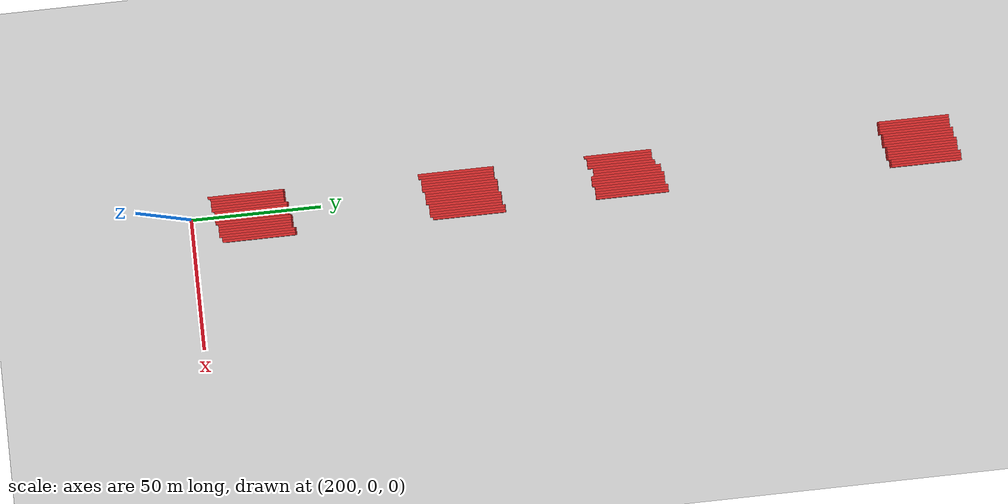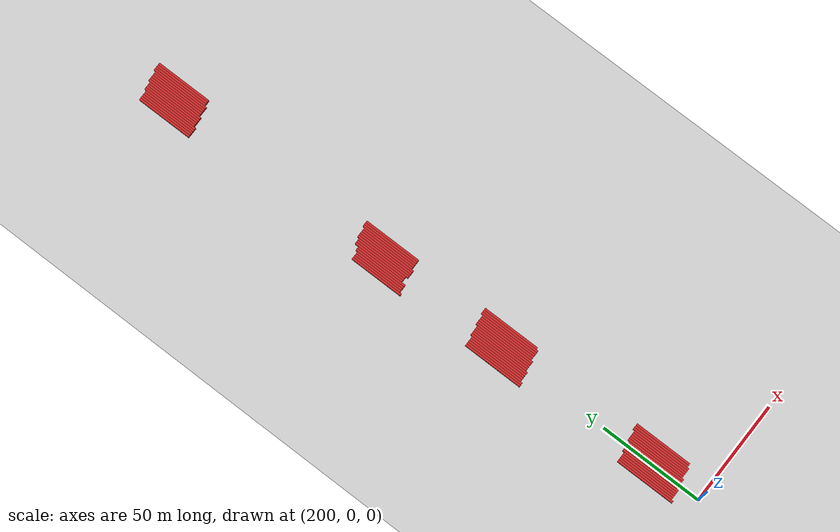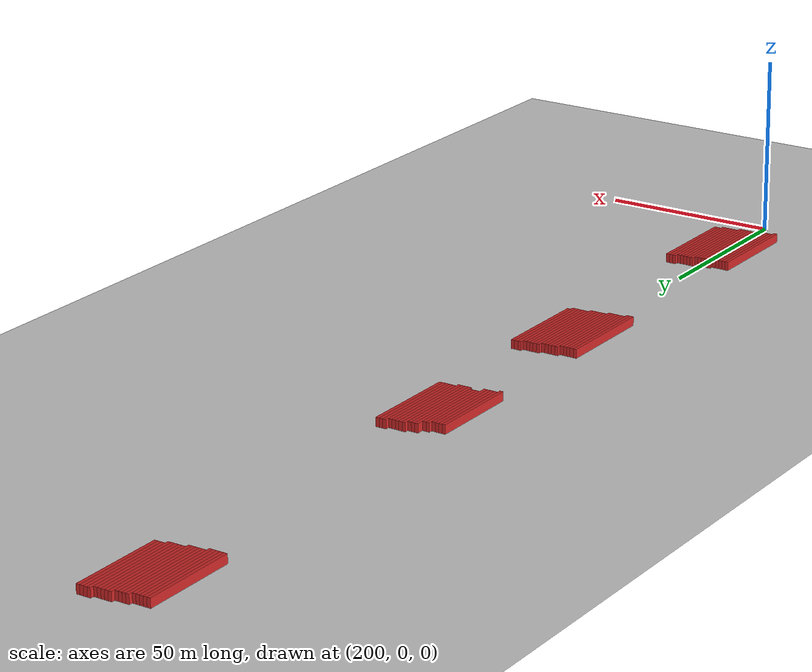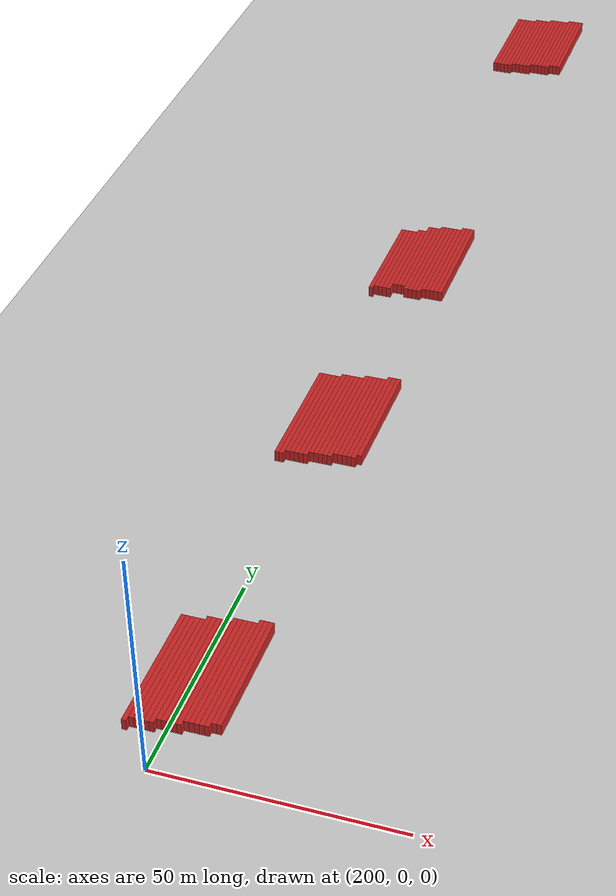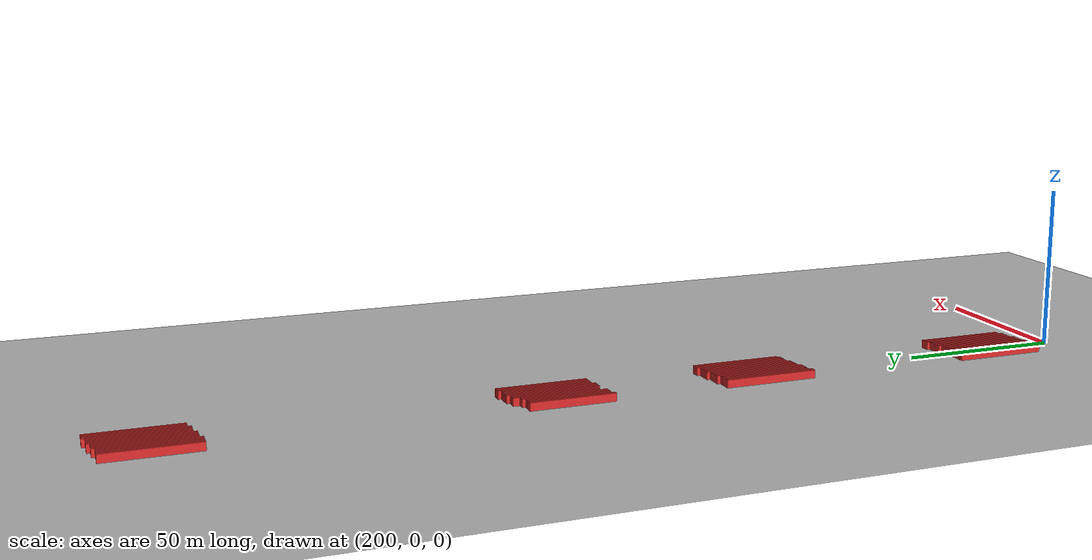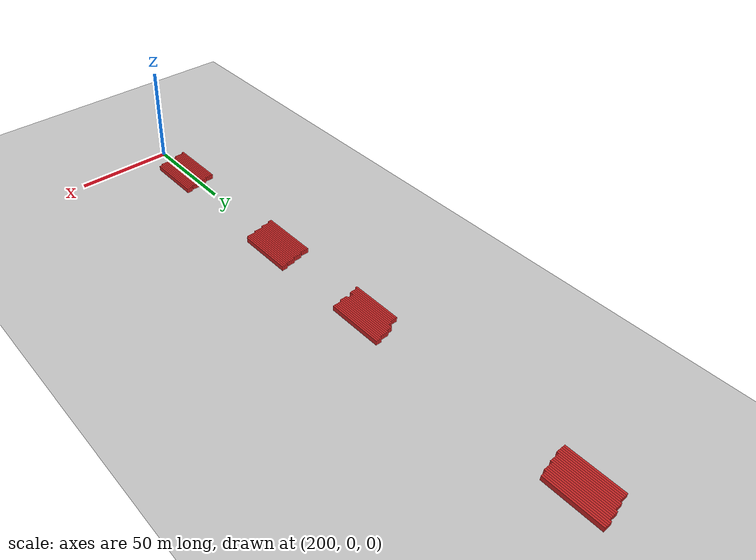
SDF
<sdf version="1.4">
 <world name="1_wall">
  <model name="ground_plane">
   <static>1</static>
   <link name="link">
    <collision name="collision">
     <geometry><plane><normal>0 0 1</normal><size>1000 1000</size></plane></geometry>
     <surface><friction><ode><mu>100</mu><mu2>50</mu2></ode></friction></surface>
    </collision>
    <visual name="visual">
     <cast_shadows>0</cast_shadows>
     <geometry><plane><normal>0 0 1</normal><size>10000 10000</size></plane></geometry>
     <material>
      <script><uri>file://media/materials/scripts/gazebo.material</uri><name>Gazebo/Grey</name></script>
     </material>
    </visual>
    <velocity_decay><linear>0</linear><angular>0</angular></velocity_decay>
   </link>
  </model>
  <model name="Wall_569">
   <static>1</static>
   <link name="Wall_569">
    <collision name="Wall_Collision_569">
     <geometry><box><size>27.0 1.0 2.5</size></box></geometry>
     <pose>0 0 1.25 0 -0 0</pose>
    </collision>
    <visual name="Wall_Visual_569">
     <pose>0 0 1.25 0 -0 0</pose>
     <geometry><box><size>27.0 1.0 2.5</size></box></geometry>
     <material>
      <script><uri>file://media/materials/scripts/gazebo.material</uri><name>Gazebo/Red</name></script>
     </material>
    </visual>
    <velocity_decay><linear>0</linear><angular>0</angular></velocity_decay>
    <pose>191.5 280.5 0 0 0 1.5707963267948966</pose>
   </link>
  </model>
  <model name="Wall_570">
   <static>1</static>
   <link name="Wall_570">
    <collision name="Wall_Collision_570">
     <geometry><box><size>29.0 1.0 2.5</size></box></geometry>
     <pose>0 0 1.25 0 -0 0</pose>
    </collision>
    <visual name="Wall_Visual_570">
     <pose>0 0 1.25 0 -0 0</pose>
     <geometry><box><size>29.0 1.0 2.5</size></box></geometry>
     <material>
      <script><uri>file://media/materials/scripts/gazebo.material</uri><name>Gazebo/Red</name></script>
     </material>
    </visual>
    <velocity_decay><linear>0</linear><angular>0</angular></velocity_decay>
    <pose>192.5 22.5 0 0 0 1.5707963267948966</pose>
   </link>
  </model>
  <model name="Wall_571">
   <static>1</static>
   <link name="Wall_571">
    <collision name="Wall_Collision_571">
     <geometry><box><size>29.0 1.0 2.5</size></box></geometry>
     <pose>0 0 1.25 0 -0 0</pose>
    </collision>
    <visual name="Wall_Visual_571">
     <pose>0 0 1.25 0 -0 0</pose>
     <geometry><box><size>29.0 1.0 2.5</size></box></geometry>
     <material>
      <script><uri>file://media/materials/scripts/gazebo.material</uri><name>Gazebo/Red</name></script>
     </material>
    </visual>
    <velocity_decay><linear>0</linear><angular>0</angular></velocity_decay>
    <pose>192.5 103.5 0 0 0 1.5707963267948966</pose>
   </link>
  </model>
  <model name="Wall_572">
   <static>1</static>
   <link name="Wall_572">
    <collision name="Wall_Collision_572">
     <geometry><box><size>26.0 1.0 2.5</size></box></geometry>
     <pose>0 0 1.25 0 -0 0</pose>
    </collision>
    <visual name="Wall_Visual_572">
     <pose>0 0 1.25 0 -0 0</pose>
     <geometry><box><size>26.0 1.0 2.5</size></box></geometry>
     <material>
      <script><uri>file://media/materials/scripts/gazebo.material</uri><name>Gazebo/Red</name></script>
     </material>
    </visual>
    <velocity_decay><linear>0</linear><angular>0</angular></velocity_decay>
    <pose>192.5 166.0 0 0 0 1.5707963267948966</pose>
   </link>
  </model>
  <model name="Wall_573">
   <static>1</static>
   <link name="Wall_573">
    <collision name="Wall_Collision_573">
     <geometry><box><size>27.0 1.0 2.5</size></box></geometry>
     <pose>0 0 1.25 0 -0 0</pose>
    </collision>
    <visual name="Wall_Visual_573">
     <pose>0 0 1.25 0 -0 0</pose>
     <geometry><box><size>27.0 1.0 2.5</size></box></geometry>
     <material>
      <script><uri>file://media/materials/scripts/gazebo.material</uri><name>Gazebo/Red</name></script>
     </material>
    </visual>
    <velocity_decay><linear>0</linear><angular>0</angular></velocity_decay>
    <pose>192.5 280.5 0 0 0 1.5707963267948966</pose>
   </link>
  </model>
  <model name="Wall_574">
   <static>1</static>
   <link name="Wall_574">
    <collision name="Wall_Collision_574">
     <geometry><box><size>28.0 1.0 2.5</size></box></geometry>
     <pose>0 0 1.25 0 -0 0</pose>
    </collision>
    <visual name="Wall_Visual_574">
     <pose>0 0 1.25 0 -0 0</pose>
     <geometry><box><size>28.0 1.0 2.5</size></box></geometry>
     <material>
      <script><uri>file://media/materials/scripts/gazebo.material</uri><name>Gazebo/Red</name></script>
     </material>
    </visual>
    <velocity_decay><linear>0</linear><angular>0</angular></velocity_decay>
    <pose>193.5 23.0 0 0 0 1.5707963267948966</pose>
   </link>
  </model>
  <model name="Wall_575">
   <static>1</static>
   <link name="Wall_575">
    <collision name="Wall_Collision_575">
     <geometry><box><size>29.0 1.0 2.5</size></box></geometry>
     <pose>0 0 1.25 0 -0 0</pose>
    </collision>
    <visual name="Wall_Visual_575">
     <pose>0 0 1.25 0 -0 0</pose>
     <geometry><box><size>29.0 1.0 2.5</size></box></geometry>
     <material>
      <script><uri>file://media/materials/scripts/gazebo.material</uri><name>Gazebo/Red</name></script>
     </material>
    </visual>
    <velocity_decay><linear>0</linear><angular>0</angular></velocity_decay>
    <pose>193.5 103.5 0 0 0 1.5707963267948966</pose>
   </link>
  </model>
  <model name="Wall_576">
   <static>1</static>
   <link name="Wall_576">
    <collision name="Wall_Collision_576">
     <geometry><box><size>25.0 1.0 2.5</size></box></geometry>
     <pose>0 0 1.25 0 -0 0</pose>
    </collision>
    <visual name="Wall_Visual_576">
     <pose>0 0 1.25 0 -0 0</pose>
     <geometry><box><size>25.0 1.0 2.5</size></box></geometry>
     <material>
      <script><uri>file://media/materials/scripts/gazebo.material</uri><name>Gazebo/Red</name></script>
     </material>
    </visual>
    <velocity_decay><linear>0</linear><angular>0</angular></velocity_decay>
    <pose>193.5 166.5 0 0 0 1.5707963267948966</pose>
   </link>
  </model>
  <model name="Wall_577">
   <static>1</static>
   <link name="Wall_577">
    <collision name="Wall_Collision_577">
     <geometry><box><size>27.0 1.0 2.5</size></box></geometry>
     <pose>0 0 1.25 0 -0 0</pose>
    </collision>
    <visual name="Wall_Visual_577">
     <pose>0 0 1.25 0 -0 0</pose>
     <geometry><box><size>27.0 1.0 2.5</size></box></geometry>
     <material>
      <script><uri>file://media/materials/scripts/gazebo.material</uri><name>Gazebo/Red</name></script>
     </material>
    </visual>
    <velocity_decay><linear>0</linear><angular>0</angular></velocity_decay>
    <pose>193.5 280.5 0 0 0 1.5707963267948966</pose>
   </link>
  </model>
  <model name="Wall_578">
   <static>1</static>
   <link name="Wall_578">
    <collision name="Wall_Collision_578">
     <geometry><box><size>28.0 1.0 2.5</size></box></geometry>
     <pose>0 0 1.25 0 -0 0</pose>
    </collision>
    <visual name="Wall_Visual_578">
     <pose>0 0 1.25 0 -0 0</pose>
     <geometry><box><size>28.0 1.0 2.5</size></box></geometry>
     <material>
      <script><uri>file://media/materials/scripts/gazebo.material</uri><name>Gazebo/Red</name></script>
     </material>
    </visual>
    <velocity_decay><linear>0</linear><angular>0</angular></velocity_decay>
    <pose>194.5 23.0 0 0 0 1.5707963267948966</pose>
   </link>
  </model>
  <model name="Wall_579">
   <static>1</static>
   <link name="Wall_579">
    <collision name="Wall_Collision_579">
     <geometry><box><size>28.0 1.0 2.5</size></box></geometry>
     <pose>0 0 1.25 0 -0 0</pose>
    </collision>
    <visual name="Wall_Visual_579">
     <pose>0 0 1.25 0 -0 0</pose>
     <geometry><box><size>28.0 1.0 2.5</size></box></geometry>
     <material>
      <script><uri>file://media/materials/scripts/gazebo.material</uri><name>Gazebo/Red</name></script>
     </material>
    </visual>
    <velocity_decay><linear>0</linear><angular>0</angular></velocity_decay>
    <pose>194.5 104.0 0 0 0 1.5707963267948966</pose>
   </link>
  </model>
  <model name="Wall_580">
   <static>1</static>
   <link name="Wall_580">
    <collision name="Wall_Collision_580">
     <geometry><box><size>25.0 1.0 2.5</size></box></geometry>
     <pose>0 0 1.25 0 -0 0</pose>
    </collision>
    <visual name="Wall_Visual_580">
     <pose>0 0 1.25 0 -0 0</pose>
     <geometry><box><size>25.0 1.0 2.5</size></box></geometry>
     <material>
      <script><uri>file://media/materials/scripts/gazebo.material</uri><name>Gazebo/Red</name></script>
     </material>
    </visual>
    <velocity_decay><linear>0</linear><angular>0</angular></velocity_decay>
    <pose>194.5 166.5 0 0 0 1.5707963267948966</pose>
   </link>
  </model>
  <model name="Wall_581">
   <static>1</static>
   <link name="Wall_581">
    <collision name="Wall_Collision_581">
     <geometry><box><size>27.0 1.0 2.5</size></box></geometry>
     <pose>0 0 1.25 0 -0 0</pose>
    </collision>
    <visual name="Wall_Visual_581">
     <pose>0 0 1.25 0 -0 0</pose>
     <geometry><box><size>27.0 1.0 2.5</size></box></geometry>
     <material>
      <script><uri>file://media/materials/scripts/gazebo.material</uri><name>Gazebo/Red</name></script>
     </material>
    </visual>
    <velocity_decay><linear>0</linear><angular>0</angular></velocity_decay>
    <pose>194.5 280.5 0 0 0 1.5707963267948966</pose>
   </link>
  </model>
  <model name="Wall_582">
   <static>1</static>
   <link name="Wall_582">
    <collision name="Wall_Collision_582">
     <geometry><box><size>28.0 1.0 2.5</size></box></geometry>
     <pose>0 0 1.25 0 -0 0</pose>
    </collision>
    <visual name="Wall_Visual_582">
     <pose>0 0 1.25 0 -0 0</pose>
     <geometry><box><size>28.0 1.0 2.5</size></box></geometry>
     <material>
      <script><uri>file://media/materials/scripts/gazebo.material</uri><name>Gazebo/Red</name></script>
     </material>
    </visual>
    <velocity_decay><linear>0</linear><angular>0</angular></velocity_decay>
    <pose>195.5 23.0 0 0 0 1.5707963267948966</pose>
   </link>
  </model>
  <model name="Wall_583">
   <static>1</static>
   <link name="Wall_583">
    <collision name="Wall_Collision_583">
     <geometry><box><size>28.0 1.0 2.5</size></box></geometry>
     <pose>0 0 1.25 0 -0 0</pose>
    </collision>
    <visual name="Wall_Visual_583">
     <pose>0 0 1.25 0 -0 0</pose>
     <geometry><box><size>28.0 1.0 2.5</size></box></geometry>
     <material>
      <script><uri>file://media/materials/scripts/gazebo.material</uri><name>Gazebo/Red</name></script>
     </material>
    </visual>
    <velocity_decay><linear>0</linear><angular>0</angular></velocity_decay>
    <pose>195.5 104.0 0 0 0 1.5707963267948966</pose>
   </link>
  </model>
  <model name="Wall_584">
   <static>1</static>
   <link name="Wall_584">
    <collision name="Wall_Collision_584">
     <geometry><box><size>25.0 1.0 2.5</size></box></geometry>
     <pose>0 0 1.25 0 -0 0</pose>
    </collision>
    <visual name="Wall_Visual_584">
     <pose>0 0 1.25 0 -0 0</pose>
     <geometry><box><size>25.0 1.0 2.5</size></box></geometry>
     <material>
      <script><uri>file://media/materials/scripts/gazebo.material</uri><name>Gazebo/Red</name></script>
     </material>
    </visual>
    <velocity_decay><linear>0</linear><angular>0</angular></velocity_decay>
    <pose>195.5 166.5 0 0 0 1.5707963267948966</pose>
   </link>
  </model>
  <model name="Wall_585">
   <static>1</static>
   <link name="Wall_585">
    <collision name="Wall_Collision_585">
     <geometry><box><size>27.0 1.0 2.5</size></box></geometry>
     <pose>0 0 1.25 0 -0 0</pose>
    </collision>
    <visual name="Wall_Visual_585">
     <pose>0 0 1.25 0 -0 0</pose>
     <geometry><box><size>27.0 1.0 2.5</size></box></geometry>
     <material>
      <script><uri>file://media/materials/scripts/gazebo.material</uri><name>Gazebo/Red</name></script>
     </material>
    </visual>
    <velocity_decay><linear>0</linear><angular>0</angular></velocity_decay>
    <pose>195.5 280.5 0 0 0 1.5707963267948966</pose>
   </link>
  </model>
  <model name="Wall_586">
   <static>1</static>
   <link name="Wall_586">
    <collision name="Wall_Collision_586">
     <geometry><box><size>28.0 1.0 2.5</size></box></geometry>
     <pose>0 0 1.25 0 -0 0</pose>
    </collision>
    <visual name="Wall_Visual_586">
     <pose>0 0 1.25 0 -0 0</pose>
     <geometry><box><size>28.0 1.0 2.5</size></box></geometry>
     <material>
      <script><uri>file://media/materials/scripts/gazebo.material</uri><name>Gazebo/Red</name></script>
     </material>
    </visual>
    <velocity_decay><linear>0</linear><angular>0</angular></velocity_decay>
    <pose>196.5 23.0 0 0 0 1.5707963267948966</pose>
   </link>
  </model>
  <model name="Wall_587">
   <static>1</static>
   <link name="Wall_587">
    <collision name="Wall_Collision_587">
     <geometry><box><size>28.0 1.0 2.5</size></box></geometry>
     <pose>0 0 1.25 0 -0 0</pose>
    </collision>
    <visual name="Wall_Visual_587">
     <pose>0 0 1.25 0 -0 0</pose>
     <geometry><box><size>28.0 1.0 2.5</size></box></geometry>
     <material>
      <script><uri>file://media/materials/scripts/gazebo.material</uri><name>Gazebo/Red</name></script>
     </material>
    </visual>
    <velocity_decay><linear>0</linear><angular>0</angular></velocity_decay>
    <pose>196.5 104.0 0 0 0 1.5707963267948966</pose>
   </link>
  </model>
  <model name="Wall_588">
   <static>1</static>
   <link name="Wall_588">
    <collision name="Wall_Collision_588">
     <geometry><box><size>26.0 1.0 2.5</size></box></geometry>
     <pose>0 0 1.25 0 -0 0</pose>
    </collision>
    <visual name="Wall_Visual_588">
     <pose>0 0 1.25 0 -0 0</pose>
     <geometry><box><size>26.0 1.0 2.5</size></box></geometry>
     <material>
      <script><uri>file://media/materials/scripts/gazebo.material</uri><name>Gazebo/Red</name></script>
     </material>
    </visual>
    <velocity_decay><linear>0</linear><angular>0</angular></velocity_decay>
    <pose>196.5 167.0 0 0 0 1.5707963267948966</pose>
   </link>
  </model>
  <model name="Wall_589">
   <static>1</static>
   <link name="Wall_589">
    <collision name="Wall_Collision_589">
     <geometry><box><size>27.0 1.0 2.5</size></box></geometry>
     <pose>0 0 1.25 0 -0 0</pose>
    </collision>
    <visual name="Wall_Visual_589">
     <pose>0 0 1.25 0 -0 0</pose>
     <geometry><box><size>27.0 1.0 2.5</size></box></geometry>
     <material>
      <script><uri>file://media/materials/scripts/gazebo.material</uri><name>Gazebo/Red</name></script>
     </material>
    </visual>
    <velocity_decay><linear>0</linear><angular>0</angular></velocity_decay>
    <pose>196.5 281.5 0 0 0 1.5707963267948966</pose>
   </link>
  </model>
  <model name="Wall_590">
   <static>1</static>
   <link name="Wall_590">
    <collision name="Wall_Collision_590">
     <geometry><box><size>29.0 1.0 2.5</size></box></geometry>
     <pose>0 0 1.25 0 -0 0</pose>
    </collision>
    <visual name="Wall_Visual_590">
     <pose>0 0 1.25 0 -0 0</pose>
     <geometry><box><size>29.0 1.0 2.5</size></box></geometry>
     <material>
      <script><uri>file://media/materials/scripts/gazebo.material</uri><name>Gazebo/Red</name></script>
     </material>
    </visual>
    <velocity_decay><linear>0</linear><angular>0</angular></velocity_decay>
    <pose>197.5 23.5 0 0 0 1.5707963267948966</pose>
   </link>
  </model>
  <model name="Wall_591">
   <static>1</static>
   <link name="Wall_591">
    <collision name="Wall_Collision_591">
     <geometry><box><size>29.0 1.0 2.5</size></box></geometry>
     <pose>0 0 1.25 0 -0 0</pose>
    </collision>
    <visual name="Wall_Visual_591">
     <pose>0 0 1.25 0 -0 0</pose>
     <geometry><box><size>29.0 1.0 2.5</size></box></geometry>
     <material>
      <script><uri>file://media/materials/scripts/gazebo.material</uri><name>Gazebo/Red</name></script>
     </material>
    </visual>
    <velocity_decay><linear>0</linear><angular>0</angular></velocity_decay>
    <pose>197.5 104.5 0 0 0 1.5707963267948966</pose>
   </link>
  </model>
  <model name="Wall_592">
   <static>1</static>
   <link name="Wall_592">
    <collision name="Wall_Collision_592">
     <geometry><box><size>24.0 1.0 2.5</size></box></geometry>
     <pose>0 0 1.25 0 -0 0</pose>
    </collision>
    <visual name="Wall_Visual_592">
     <pose>0 0 1.25 0 -0 0</pose>
     <geometry><box><size>24.0 1.0 2.5</size></box></geometry>
     <material>
      <script><uri>file://media/materials/scripts/gazebo.material</uri><name>Gazebo/Red</name></script>
     </material>
    </visual>
    <velocity_decay><linear>0</linear><angular>0</angular></velocity_decay>
    <pose>197.5 168.0 0 0 0 1.5707963267948966</pose>
   </link>
  </model>
  <model name="Wall_593">
   <static>1</static>
   <link name="Wall_593">
    <collision name="Wall_Collision_593">
     <geometry><box><size>27.0 1.0 2.5</size></box></geometry>
     <pose>0 0 1.25 0 -0 0</pose>
    </collision>
    <visual name="Wall_Visual_593">
     <pose>0 0 1.25 0 -0 0</pose>
     <geometry><box><size>27.0 1.0 2.5</size></box></geometry>
     <material>
      <script><uri>file://media/materials/scripts/gazebo.material</uri><name>Gazebo/Red</name></script>
     </material>
    </visual>
    <velocity_decay><linear>0</linear><angular>0</angular></velocity_decay>
    <pose>197.5 281.5 0 0 0 1.5707963267948966</pose>
   </link>
  </model>
  <model name="Wall_594">
   <static>1</static>
   <link name="Wall_594">
    <collision name="Wall_Collision_594">
     <geometry><box><size>28.0 1.0 2.5</size></box></geometry>
     <pose>0 0 1.25 0 -0 0</pose>
    </collision>
    <visual name="Wall_Visual_594">
     <pose>0 0 1.25 0 -0 0</pose>
     <geometry><box><size>28.0 1.0 2.5</size></box></geometry>
     <material>
      <script><uri>file://media/materials/scripts/gazebo.material</uri><name>Gazebo/Red</name></script>
     </material>
    </visual>
    <velocity_decay><linear>0</linear><angular>0</angular></velocity_decay>
    <pose>198.5 24.0 0 0 0 1.5707963267948966</pose>
   </link>
  </model>
  <model name="Wall_595">
   <static>1</static>
   <link name="Wall_595">
    <collision name="Wall_Collision_595">
     <geometry><box><size>29.0 1.0 2.5</size></box></geometry>
     <pose>0 0 1.25 0 -0 0</pose>
    </collision>
    <visual name="Wall_Visual_595">
     <pose>0 0 1.25 0 -0 0</pose>
     <geometry><box><size>29.0 1.0 2.5</size></box></geometry>
     <material>
      <script><uri>file://media/materials/scripts/gazebo.material</uri><name>Gazebo/Red</name></script>
     </material>
    </visual>
    <velocity_decay><linear>0</linear><angular>0</angular></velocity_decay>
    <pose>198.5 104.5 0 0 0 1.5707963267948966</pose>
   </link>
  </model>
  <model name="Wall_596">
   <static>1</static>
   <link name="Wall_596">
    <collision name="Wall_Collision_596">
     <geometry><box><size>26.0 1.0 2.5</size></box></geometry>
     <pose>0 0 1.25 0 -0 0</pose>
    </collision>
    <visual name="Wall_Visual_596">
     <pose>0 0 1.25 0 -0 0</pose>
     <geometry><box><size>26.0 1.0 2.5</size></box></geometry>
     <material>
      <script><uri>file://media/materials/scripts/gazebo.material</uri><name>Gazebo/Red</name></script>
     </material>
    </visual>
    <velocity_decay><linear>0</linear><angular>0</angular></velocity_decay>
    <pose>198.5 169.0 0 0 0 1.5707963267948966</pose>
   </link>
  </model>
  <model name="Wall_597">
   <static>1</static>
   <link name="Wall_597">
    <collision name="Wall_Collision_597">
     <geometry><box><size>27.0 1.0 2.5</size></box></geometry>
     <pose>0 0 1.25 0 -0 0</pose>
    </collision>
    <visual name="Wall_Visual_597">
     <pose>0 0 1.25 0 -0 0</pose>
     <geometry><box><size>27.0 1.0 2.5</size></box></geometry>
     <material>
      <script><uri>file://media/materials/scripts/gazebo.material</uri><name>Gazebo/Red</name></script>
     </material>
    </visual>
    <velocity_decay><linear>0</linear><angular>0</angular></velocity_decay>
    <pose>198.5 281.5 0 0 0 1.5707963267948966</pose>
   </link>
  </model>
  <model name="Wall_598">
   <static>1</static>
   <link name="Wall_598">
    <collision name="Wall_Collision_598">
     <geometry><box><size>28.0 1.0 2.5</size></box></geometry>
     <pose>0 0 1.25 0 -0 0</pose>
    </collision>
    <visual name="Wall_Visual_598">
     <pose>0 0 1.25 0 -0 0</pose>
     <geometry><box><size>28.0 1.0 2.5</size></box></geometry>
     <material>
      <script><uri>file://media/materials/scripts/gazebo.material</uri><name>Gazebo/Red</name></script>
     </material>
    </visual>
    <velocity_decay><linear>0</linear><angular>0</angular></velocity_decay>
    <pose>199.5 24.0 0 0 0 1.5707963267948966</pose>
   </link>
  </model>
  <model name="Wall_599">
   <static>1</static>
   <link name="Wall_599">
    <collision name="Wall_Collision_599">
     <geometry><box><size>28.0 1.0 2.5</size></box></geometry>
     <pose>0 0 1.25 0 -0 0</pose>
    </collision>
    <visual name="Wall_Visual_599">
     <pose>0 0 1.25 0 -0 0</pose>
     <geometry><box><size>28.0 1.0 2.5</size></box></geometry>
     <material>
      <script><uri>file://media/materials/scripts/gazebo.material</uri><name>Gazebo/Red</name></script>
     </material>
    </visual>
    <velocity_decay><linear>0</linear><angular>0</angular></velocity_decay>
    <pose>199.5 105.0 0 0 0 1.5707963267948966</pose>
   </link>
  </model>
  <model name="Wall_600">
   <static>1</static>
   <link name="Wall_600">
    <collision name="Wall_Collision_600">
     <geometry><box><size>26.0 1.0 2.5</size></box></geometry>
     <pose>0 0 1.25 0 -0 0</pose>
    </collision>
    <visual name="Wall_Visual_600">
     <pose>0 0 1.25 0 -0 0</pose>
     <geometry><box><size>26.0 1.0 2.5</size></box></geometry>
     <material>
      <script><uri>file://media/materials/scripts/gazebo.material</uri><name>Gazebo/Red</name></script>
     </material>
    </visual>
    <velocity_decay><linear>0</linear><angular>0</angular></velocity_decay>
    <pose>199.5 169.0 0 0 0 1.5707963267948966</pose>
   </link>
  </model>
  <model name="Wall_601">
   <static>1</static>
   <link name="Wall_601">
    <collision name="Wall_Collision_601">
     <geometry><box><size>27.0 1.0 2.5</size></box></geometry>
     <pose>0 0 1.25 0 -0 0</pose>
    </collision>
    <visual name="Wall_Visual_601">
     <pose>0 0 1.25 0 -0 0</pose>
     <geometry><box><size>27.0 1.0 2.5</size></box></geometry>
     <material>
      <script><uri>file://media/materials/scripts/gazebo.material</uri><name>Gazebo/Red</name></script>
     </material>
    </visual>
    <velocity_decay><linear>0</linear><angular>0</angular></velocity_decay>
    <pose>199.5 281.5 0 0 0 1.5707963267948966</pose>
   </link>
  </model>
  <model name="Wall_602">
   <static>1</static>
   <link name="Wall_602">
    <collision name="Wall_Collision_602">
     <geometry><box><size>28.0 1.0 2.5</size></box></geometry>
     <pose>0 0 1.25 0 -0 0</pose>
    </collision>
    <visual name="Wall_Visual_602">
     <pose>0 0 1.25 0 -0 0</pose>
     <geometry><box><size>28.0 1.0 2.5</size></box></geometry>
     <material>
      <script><uri>file://media/materials/scripts/gazebo.material</uri><name>Gazebo/Red</name></script>
     </material>
    </visual>
    <velocity_decay><linear>0</linear><angular>0</angular></velocity_decay>
    <pose>200.5 24.0 0 0 0 1.5707963267948966</pose>
   </link>
  </model>
  <model name="Wall_603">
   <static>1</static>
   <link name="Wall_603">
    <collision name="Wall_Collision_603">
     <geometry><box><size>28.0 1.0 2.5</size></box></geometry>
     <pose>0 0 1.25 0 -0 0</pose>
    </collision>
    <visual name="Wall_Visual_603">
     <pose>0 0 1.25 0 -0 0</pose>
     <geometry><box><size>28.0 1.0 2.5</size></box></geometry>
     <material>
      <script><uri>file://media/materials/scripts/gazebo.material</uri><name>Gazebo/Red</name></script>
     </material>
    </visual>
    <velocity_decay><linear>0</linear><angular>0</angular></velocity_decay>
    <pose>200.5 105.0 0 0 0 1.5707963267948966</pose>
   </link>
  </model>
  <model name="Wall_604">
   <static>1</static>
   <link name="Wall_604">
    <collision name="Wall_Collision_604">
     <geometry><box><size>27.0 1.0 2.5</size></box></geometry>
     <pose>0 0 1.25 0 -0 0</pose>
    </collision>
    <visual name="Wall_Visual_604">
     <pose>0 0 1.25 0 -0 0</pose>
     <geometry><box><size>27.0 1.0 2.5</size></box></geometry>
     <material>
      <script><uri>file://media/materials/scripts/gazebo.material</uri><name>Gazebo/Red</name></script>
     </material>
    </visual>
    <velocity_decay><linear>0</linear><angular>0</angular></velocity_decay>
    <pose>200.5 168.5 0 0 0 1.5707963267948966</pose>
   </link>
  </model>
  <model name="Wall_605">
   <static>1</static>
   <link name="Wall_605">
    <collision name="Wall_Collision_605">
     <geometry><box><size>28.0 1.0 2.5</size></box></geometry>
     <pose>0 0 1.25 0 -0 0</pose>
    </collision>
    <visual name="Wall_Visual_605">
     <pose>0 0 1.25 0 -0 0</pose>
     <geometry><box><size>28.0 1.0 2.5</size></box></geometry>
     <material>
      <script><uri>file://media/materials/scripts/gazebo.material</uri><name>Gazebo/Red</name></script>
     </material>
    </visual>
    <velocity_decay><linear>0</linear><angular>0</angular></velocity_decay>
    <pose>200.5 282.0 0 0 0 1.5707963267948966</pose>
   </link>
  </model>
  <model name="Wall_606">
   <static>1</static>
   <link name="Wall_606">
    <collision name="Wall_Collision_606">
     <geometry><box><size>28.0 1.0 2.5</size></box></geometry>
     <pose>0 0 1.25 0 -0 0</pose>
    </collision>
    <visual name="Wall_Visual_606">
     <pose>0 0 1.25 0 -0 0</pose>
     <geometry><box><size>28.0 1.0 2.5</size></box></geometry>
     <material>
      <script><uri>file://media/materials/scripts/gazebo.material</uri><name>Gazebo/Red</name></script>
     </material>
    </visual>
    <velocity_decay><linear>0</linear><angular>0</angular></velocity_decay>
    <pose>201.5 24.0 0 0 0 1.5707963267948966</pose>
   </link>
  </model>
  <model name="Wall_607">
   <static>1</static>
   <link name="Wall_607">
    <collision name="Wall_Collision_607">
     <geometry><box><size>28.0 1.0 2.5</size></box></geometry>
     <pose>0 0 1.25 0 -0 0</pose>
    </collision>
    <visual name="Wall_Visual_607">
     <pose>0 0 1.25 0 -0 0</pose>
     <geometry><box><size>28.0 1.0 2.5</size></box></geometry>
     <material>
      <script><uri>file://media/materials/scripts/gazebo.material</uri><name>Gazebo/Red</name></script>
     </material>
    </visual>
    <velocity_decay><linear>0</linear><angular>0</angular></velocity_decay>
    <pose>201.5 105.0 0 0 0 1.5707963267948966</pose>
   </link>
  </model>
  <model name="Wall_608">
   <static>1</static>
   <link name="Wall_608">
    <collision name="Wall_Collision_608">
     <geometry><box><size>28.0 1.0 2.5</size></box></geometry>
     <pose>0 0 1.25 0 -0 0</pose>
    </collision>
    <visual name="Wall_Visual_608">
     <pose>0 0 1.25 0 -0 0</pose>
     <geometry><box><size>28.0 1.0 2.5</size></box></geometry>
     <material>
      <script><uri>file://media/materials/scripts/gazebo.material</uri><name>Gazebo/Red</name></script>
     </material>
    </visual>
    <velocity_decay><linear>0</linear><angular>0</angular></velocity_decay>
    <pose>201.5 169.0 0 0 0 1.5707963267948966</pose>
   </link>
  </model>
  <model name="Wall_609">
   <static>1</static>
   <link name="Wall_609">
    <collision name="Wall_Collision_609">
     <geometry><box><size>27.0 1.0 2.5</size></box></geometry>
     <pose>0 0 1.25 0 -0 0</pose>
    </collision>
    <visual name="Wall_Visual_609">
     <pose>0 0 1.25 0 -0 0</pose>
     <geometry><box><size>27.0 1.0 2.5</size></box></geometry>
     <material>
      <script><uri>file://media/materials/scripts/gazebo.material</uri><name>Gazebo/Red</name></script>
     </material>
    </visual>
    <velocity_decay><linear>0</linear><angular>0</angular></velocity_decay>
    <pose>201.5 282.5 0 0 0 1.5707963267948966</pose>
   </link>
  </model>
  <model name="Wall_610">
   <static>1</static>
   <link name="Wall_610">
    <collision name="Wall_Collision_610">
     <geometry><box><size>29.0 1.0 2.5</size></box></geometry>
     <pose>0 0 1.25 0 -0 0</pose>
    </collision>
    <visual name="Wall_Visual_610">
     <pose>0 0 1.25 0 -0 0</pose>
     <geometry><box><size>29.0 1.0 2.5</size></box></geometry>
     <material>
      <script><uri>file://media/materials/scripts/gazebo.material</uri><name>Gazebo/Red</name></script>
     </material>
    </visual>
    <velocity_decay><linear>0</linear><angular>0</angular></velocity_decay>
    <pose>202.5 24.5 0 0 0 1.5707963267948966</pose>
   </link>
  </model>
  <model name="Wall_611">
   <static>1</static>
   <link name="Wall_611">
    <collision name="Wall_Collision_611">
     <geometry><box><size>29.0 1.0 2.5</size></box></geometry>
     <pose>0 0 1.25 0 -0 0</pose>
    </collision>
    <visual name="Wall_Visual_611">
     <pose>0 0 1.25 0 -0 0</pose>
     <geometry><box><size>29.0 1.0 2.5</size></box></geometry>
     <material>
      <script><uri>file://media/materials/scripts/gazebo.material</uri><name>Gazebo/Red</name></script>
     </material>
    </visual>
    <velocity_decay><linear>0</linear><angular>0</angular></velocity_decay>
    <pose>202.5 105.5 0 0 0 1.5707963267948966</pose>
   </link>
  </model>
  <model name="Wall_612">
   <static>1</static>
   <link name="Wall_612">
    <collision name="Wall_Collision_612">
     <geometry><box><size>28.0 1.0 2.5</size></box></geometry>
     <pose>0 0 1.25 0 -0 0</pose>
    </collision>
    <visual name="Wall_Visual_612">
     <pose>0 0 1.25 0 -0 0</pose>
     <geometry><box><size>28.0 1.0 2.5</size></box></geometry>
     <material>
      <script><uri>file://media/materials/scripts/gazebo.material</uri><name>Gazebo/Red</name></script>
     </material>
    </visual>
    <velocity_decay><linear>0</linear><angular>0</angular></velocity_decay>
    <pose>202.5 169.0 0 0 0 1.5707963267948966</pose>
   </link>
  </model>
  <model name="Wall_613">
   <static>1</static>
   <link name="Wall_613">
    <collision name="Wall_Collision_613">
     <geometry><box><size>27.0 1.0 2.5</size></box></geometry>
     <pose>0 0 1.25 0 -0 0</pose>
    </collision>
    <visual name="Wall_Visual_613">
     <pose>0 0 1.25 0 -0 0</pose>
     <geometry><box><size>27.0 1.0 2.5</size></box></geometry>
     <material>
      <script><uri>file://media/materials/scripts/gazebo.material</uri><name>Gazebo/Red</name></script>
     </material>
    </visual>
    <velocity_decay><linear>0</linear><angular>0</angular></velocity_decay>
    <pose>202.5 282.5 0 0 0 1.5707963267948966</pose>
   </link>
  </model>
  <model name="Wall_614">
   <static>1</static>
   <link name="Wall_614">
    <collision name="Wall_Collision_614">
     <geometry><box><size>28.0 1.0 2.5</size></box></geometry>
     <pose>0 0 1.25 0 -0 0</pose>
    </collision>
    <visual name="Wall_Visual_614">
     <pose>0 0 1.25 0 -0 0</pose>
     <geometry><box><size>28.0 1.0 2.5</size></box></geometry>
     <material>
      <script><uri>file://media/materials/scripts/gazebo.material</uri><name>Gazebo/Red</name></script>
     </material>
    </visual>
    <velocity_decay><linear>0</linear><angular>0</angular></velocity_decay>
    <pose>203.5 25.0 0 0 0 1.5707963267948966</pose>
   </link>
  </model>
  <model name="Wall_615">
   <static>1</static>
   <link name="Wall_615">
    <collision name="Wall_Collision_615">
     <geometry><box><size>29.0 1.0 2.5</size></box></geometry>
     <pose>0 0 1.25 0 -0 0</pose>
    </collision>
    <visual name="Wall_Visual_615">
     <pose>0 0 1.25 0 -0 0</pose>
     <geometry><box><size>29.0 1.0 2.5</size></box></geometry>
     <material>
      <script><uri>file://media/materials/scripts/gazebo.material</uri><name>Gazebo/Red</name></script>
     </material>
    </visual>
    <velocity_decay><linear>0</linear><angular>0</angular></velocity_decay>
    <pose>203.5 105.5 0 0 0 1.5707963267948966</pose>
   </link>
  </model>
  <model name="Wall_616">
   <static>1</static>
   <link name="Wall_616">
    <collision name="Wall_Collision_616">
     <geometry><box><size>28.0 1.0 2.5</size></box></geometry>
     <pose>0 0 1.25 0 -0 0</pose>
    </collision>
    <visual name="Wall_Visual_616">
     <pose>0 0 1.25 0 -0 0</pose>
     <geometry><box><size>28.0 1.0 2.5</size></box></geometry>
     <material>
      <script><uri>file://media/materials/scripts/gazebo.material</uri><name>Gazebo/Red</name></script>
     </material>
    </visual>
    <velocity_decay><linear>0</linear><angular>0</angular></velocity_decay>
    <pose>203.5 169.0 0 0 0 1.5707963267948966</pose>
   </link>
  </model>
  <model name="Wall_617">
   <static>1</static>
   <link name="Wall_617">
    <collision name="Wall_Collision_617">
     <geometry><box><size>27.0 1.0 2.5</size></box></geometry>
     <pose>0 0 1.25 0 -0 0</pose>
    </collision>
    <visual name="Wall_Visual_617">
     <pose>0 0 1.25 0 -0 0</pose>
     <geometry><box><size>27.0 1.0 2.5</size></box></geometry>
     <material>
      <script><uri>file://media/materials/scripts/gazebo.material</uri><name>Gazebo/Red</name></script>
     </material>
    </visual>
    <velocity_decay><linear>0</linear><angular>0</angular></velocity_decay>
    <pose>203.5 282.5 0 0 0 1.5707963267948966</pose>
   </link>
  </model>
  <model name="Wall_618">
   <static>1</static>
   <link name="Wall_618">
    <collision name="Wall_Collision_618">
     <geometry><box><size>28.0 1.0 2.5</size></box></geometry>
     <pose>0 0 1.25 0 -0 0</pose>
    </collision>
    <visual name="Wall_Visual_618">
     <pose>0 0 1.25 0 -0 0</pose>
     <geometry><box><size>28.0 1.0 2.5</size></box></geometry>
     <material>
      <script><uri>file://media/materials/scripts/gazebo.material</uri><name>Gazebo/Red</name></script>
     </material>
    </visual>
    <velocity_decay><linear>0</linear><angular>0</angular></velocity_decay>
    <pose>204.5 25.0 0 0 0 1.5707963267948966</pose>
   </link>
  </model>
  <model name="Wall_619">
   <static>1</static>
   <link name="Wall_619">
    <collision name="Wall_Collision_619">
     <geometry><box><size>28.0 1.0 2.5</size></box></geometry>
     <pose>0 0 1.25 0 -0 0</pose>
    </collision>
    <visual name="Wall_Visual_619">
     <pose>0 0 1.25 0 -0 0</pose>
     <geometry><box><size>28.0 1.0 2.5</size></box></geometry>
     <material>
      <script><uri>file://media/materials/scripts/gazebo.material</uri><name>Gazebo/Red</name></script>
     </material>
    </visual>
    <velocity_decay><linear>0</linear><angular>0</angular></velocity_decay>
    <pose>204.5 106.0 0 0 0 1.5707963267948966</pose>
   </link>
  </model>
  <model name="Wall_620">
   <static>1</static>
   <link name="Wall_620">
    <collision name="Wall_Collision_620">
     <geometry><box><size>27.0 1.0 2.5</size></box></geometry>
     <pose>0 0 1.25 0 -0 0</pose>
    </collision>
    <visual name="Wall_Visual_620">
     <pose>0 0 1.25 0 -0 0</pose>
     <geometry><box><size>27.0 1.0 2.5</size></box></geometry>
     <material>
      <script><uri>file://media/materials/scripts/gazebo.material</uri><name>Gazebo/Red</name></script>
     </material>
    </visual>
    <velocity_decay><linear>0</linear><angular>0</angular></velocity_decay>
    <pose>204.5 169.5 0 0 0 1.5707963267948966</pose>
   </link>
  </model>
  <model name="Wall_621">
   <static>1</static>
   <link name="Wall_621">
    <collision name="Wall_Collision_621">
     <geometry><box><size>27.0 1.0 2.5</size></box></geometry>
     <pose>0 0 1.25 0 -0 0</pose>
    </collision>
    <visual name="Wall_Visual_621">
     <pose>0 0 1.25 0 -0 0</pose>
     <geometry><box><size>27.0 1.0 2.5</size></box></geometry>
     <material>
      <script><uri>file://media/materials/scripts/gazebo.material</uri><name>Gazebo/Red</name></script>
     </material>
    </visual>
    <velocity_decay><linear>0</linear><angular>0</angular></velocity_decay>
    <pose>204.5 282.5 0 0 0 1.5707963267948966</pose>
   </link>
  </model>
  <model name="Wall_622">
   <static>1</static>
   <link name="Wall_622">
    <collision name="Wall_Collision_622">
     <geometry><box><size>28.0 1.0 2.5</size></box></geometry>
     <pose>0 0 1.25 0 -0 0</pose>
    </collision>
    <visual name="Wall_Visual_622">
     <pose>0 0 1.25 0 -0 0</pose>
     <geometry><box><size>28.0 1.0 2.5</size></box></geometry>
     <material>
      <script><uri>file://media/materials/scripts/gazebo.material</uri><name>Gazebo/Red</name></script>
     </material>
    </visual>
    <velocity_decay><linear>0</linear><angular>0</angular></velocity_decay>
    <pose>205.5 25.0 0 0 0 1.5707963267948966</pose>
   </link>
  </model>
  <model name="Wall_623">
   <static>1</static>
   <link name="Wall_623">
    <collision name="Wall_Collision_623">
     <geometry><box><size>28.0 1.0 2.5</size></box></geometry>
     <pose>0 0 1.25 0 -0 0</pose>
    </collision>
    <visual name="Wall_Visual_623">
     <pose>0 0 1.25 0 -0 0</pose>
     <geometry><box><size>28.0 1.0 2.5</size></box></geometry>
     <material>
      <script><uri>file://media/materials/scripts/gazebo.material</uri><name>Gazebo/Red</name></script>
     </material>
    </visual>
    <velocity_decay><linear>0</linear><angular>0</angular></velocity_decay>
    <pose>205.5 106.0 0 0 0 1.5707963267948966</pose>
   </link>
  </model>
  <model name="Wall_624">
   <static>1</static>
   <link name="Wall_624">
    <collision name="Wall_Collision_624">
     <geometry><box><size>27.0 1.0 2.5</size></box></geometry>
     <pose>0 0 1.25 0 -0 0</pose>
    </collision>
    <visual name="Wall_Visual_624">
     <pose>0 0 1.25 0 -0 0</pose>
     <geometry><box><size>27.0 1.0 2.5</size></box></geometry>
     <material>
      <script><uri>file://media/materials/scripts/gazebo.material</uri><name>Gazebo/Red</name></script>
     </material>
    </visual>
    <velocity_decay><linear>0</linear><angular>0</angular></velocity_decay>
    <pose>205.5 169.5 0 0 0 1.5707963267948966</pose>
   </link>
  </model>
  <model name="Wall_625">
   <static>1</static>
   <link name="Wall_625">
    <collision name="Wall_Collision_625">
     <geometry><box><size>28.0 1.0 2.5</size></box></geometry>
     <pose>0 0 1.25 0 -0 0</pose>
    </collision>
    <visual name="Wall_Visual_625">
     <pose>0 0 1.25 0 -0 0</pose>
     <geometry><box><size>28.0 1.0 2.5</size></box></geometry>
     <material>
      <script><uri>file://media/materials/scripts/gazebo.material</uri><name>Gazebo/Red</name></script>
     </material>
    </visual>
    <velocity_decay><linear>0</linear><angular>0</angular></velocity_decay>
    <pose>205.5 283.0 0 0 0 1.5707963267948966</pose>
   </link>
  </model>
  <model name="Wall_626">
   <static>1</static>
   <link name="Wall_626">
    <collision name="Wall_Collision_626">
     <geometry><box><size>28.0 1.0 2.5</size></box></geometry>
     <pose>0 0 1.25 0 -0 0</pose>
    </collision>
    <visual name="Wall_Visual_626">
     <pose>0 0 1.25 0 -0 0</pose>
     <geometry><box><size>28.0 1.0 2.5</size></box></geometry>
     <material>
      <script><uri>file://media/materials/scripts/gazebo.material</uri><name>Gazebo/Red</name></script>
     </material>
    </visual>
    <velocity_decay><linear>0</linear><angular>0</angular></velocity_decay>
    <pose>206.5 25.0 0 0 0 1.5707963267948966</pose>
   </link>
  </model>
  <model name="Wall_627">
   <static>1</static>
   <link name="Wall_627">
    <collision name="Wall_Collision_627">
     <geometry><box><size>28.0 1.0 2.5</size></box></geometry>
     <pose>0 0 1.25 0 -0 0</pose>
    </collision>
    <visual name="Wall_Visual_627">
     <pose>0 0 1.25 0 -0 0</pose>
     <geometry><box><size>28.0 1.0 2.5</size></box></geometry>
     <material>
      <script><uri>file://media/materials/scripts/gazebo.material</uri><name>Gazebo/Red</name></script>
     </material>
    </visual>
    <velocity_decay><linear>0</linear><angular>0</angular></velocity_decay>
    <pose>206.5 106.0 0 0 0 1.5707963267948966</pose>
   </link>
  </model>
  <model name="Wall_628">
   <static>1</static>
   <link name="Wall_628">
    <collision name="Wall_Collision_628">
     <geometry><box><size>28.0 1.0 2.5</size></box></geometry>
     <pose>0 0 1.25 0 -0 0</pose>
    </collision>
    <visual name="Wall_Visual_628">
     <pose>0 0 1.25 0 -0 0</pose>
     <geometry><box><size>28.0 1.0 2.5</size></box></geometry>
     <material>
      <script><uri>file://media/materials/scripts/gazebo.material</uri><name>Gazebo/Red</name></script>
     </material>
    </visual>
    <velocity_decay><linear>0</linear><angular>0</angular></velocity_decay>
    <pose>206.5 170.0 0 0 0 1.5707963267948966</pose>
   </link>
  </model>
  <model name="Wall_629">
   <static>1</static>
   <link name="Wall_629">
    <collision name="Wall_Collision_629">
     <geometry><box><size>27.0 1.0 2.5</size></box></geometry>
     <pose>0 0 1.25 0 -0 0</pose>
    </collision>
    <visual name="Wall_Visual_629">
     <pose>0 0 1.25 0 -0 0</pose>
     <geometry><box><size>27.0 1.0 2.5</size></box></geometry>
     <material>
      <script><uri>file://media/materials/scripts/gazebo.material</uri><name>Gazebo/Red</name></script>
     </material>
    </visual>
    <velocity_decay><linear>0</linear><angular>0</angular></velocity_decay>
    <pose>206.5 283.5 0 0 0 1.5707963267948966</pose>
   </link>
  </model>
  <model name="Wall_630">
   <static>1</static>
   <link name="Wall_630">
    <collision name="Wall_Collision_630">
     <geometry><box><size>29.0 1.0 2.5</size></box></geometry>
     <pose>0 0 1.25 0 -0 0</pose>
    </collision>
    <visual name="Wall_Visual_630">
     <pose>0 0 1.25 0 -0 0</pose>
     <geometry><box><size>29.0 1.0 2.5</size></box></geometry>
     <material>
      <script><uri>file://media/materials/scripts/gazebo.material</uri><name>Gazebo/Red</name></script>
     </material>
    </visual>
    <velocity_decay><linear>0</linear><angular>0</angular></velocity_decay>
    <pose>207.5 25.5 0 0 0 1.5707963267948966</pose>
   </link>
  </model>
  <model name="Wall_631">
   <static>1</static>
   <link name="Wall_631">
    <collision name="Wall_Collision_631">
     <geometry><box><size>29.0 1.0 2.5</size></box></geometry>
     <pose>0 0 1.25 0 -0 0</pose>
    </collision>
    <visual name="Wall_Visual_631">
     <pose>0 0 1.25 0 -0 0</pose>
     <geometry><box><size>29.0 1.0 2.5</size></box></geometry>
     <material>
      <script><uri>file://media/materials/scripts/gazebo.material</uri><name>Gazebo/Red</name></script>
     </material>
    </visual>
    <velocity_decay><linear>0</linear><angular>0</angular></velocity_decay>
    <pose>207.5 106.5 0 0 0 1.5707963267948966</pose>
   </link>
  </model>
  <model name="Wall_632">
   <static>1</static>
   <link name="Wall_632">
    <collision name="Wall_Collision_632">
     <geometry><box><size>28.0 1.0 2.5</size></box></geometry>
     <pose>0 0 1.25 0 -0 0</pose>
    </collision>
    <visual name="Wall_Visual_632">
     <pose>0 0 1.25 0 -0 0</pose>
     <geometry><box><size>28.0 1.0 2.5</size></box></geometry>
     <material>
      <script><uri>file://media/materials/scripts/gazebo.material</uri><name>Gazebo/Red</name></script>
     </material>
    </visual>
    <velocity_decay><linear>0</linear><angular>0</angular></velocity_decay>
    <pose>207.5 170.0 0 0 0 1.5707963267948966</pose>
   </link>
  </model>
  <model name="Wall_633">
   <static>1</static>
   <link name="Wall_633">
    <collision name="Wall_Collision_633">
     <geometry><box><size>27.0 1.0 2.5</size></box></geometry>
     <pose>0 0 1.25 0 -0 0</pose>
    </collision>
    <visual name="Wall_Visual_633">
     <pose>0 0 1.25 0 -0 0</pose>
     <geometry><box><size>27.0 1.0 2.5</size></box></geometry>
     <material>
      <script><uri>file://media/materials/scripts/gazebo.material</uri><name>Gazebo/Red</name></script>
     </material>
    </visual>
    <velocity_decay><linear>0</linear><angular>0</angular></velocity_decay>
    <pose>207.5 283.5 0 0 0 1.5707963267948966</pose>
   </link>
  </model>
  <model name="Wall_634">
   <static>1</static>
   <link name="Wall_634">
    <collision name="Wall_Collision_634">
     <geometry><box><size>28.0 1.0 2.5</size></box></geometry>
     <pose>0 0 1.25 0 -0 0</pose>
    </collision>
    <visual name="Wall_Visual_634">
     <pose>0 0 1.25 0 -0 0</pose>
     <geometry><box><size>28.0 1.0 2.5</size></box></geometry>
     <material>
      <script><uri>file://media/materials/scripts/gazebo.material</uri><name>Gazebo/Red</name></script>
     </material>
    </visual>
    <velocity_decay><linear>0</linear><angular>0</angular></velocity_decay>
    <pose>208.5 26.0 0 0 0 1.5707963267948966</pose>
   </link>
  </model>
  <model name="Wall_635">
   <static>1</static>
   <link name="Wall_635">
    <collision name="Wall_Collision_635">
     <geometry><box><size>29.0 1.0 2.5</size></box></geometry>
     <pose>0 0 1.25 0 -0 0</pose>
    </collision>
    <visual name="Wall_Visual_635">
     <pose>0 0 1.25 0 -0 0</pose>
     <geometry><box><size>29.0 1.0 2.5</size></box></geometry>
     <material>
      <script><uri>file://media/materials/scripts/gazebo.material</uri><name>Gazebo/Red</name></script>
     </material>
    </visual>
    <velocity_decay><linear>0</linear><angular>0</angular></velocity_decay>
    <pose>208.5 106.5 0 0 0 1.5707963267948966</pose>
   </link>
  </model>
  <model name="Wall_636">
   <static>1</static>
   <link name="Wall_636">
    <collision name="Wall_Collision_636">
     <geometry><box><size>28.0 1.0 2.5</size></box></geometry>
     <pose>0 0 1.25 0 -0 0</pose>
    </collision>
    <visual name="Wall_Visual_636">
     <pose>0 0 1.25 0 -0 0</pose>
     <geometry><box><size>28.0 1.0 2.5</size></box></geometry>
     <material>
      <script><uri>file://media/materials/scripts/gazebo.material</uri><name>Gazebo/Red</name></script>
     </material>
    </visual>
    <velocity_decay><linear>0</linear><angular>0</angular></velocity_decay>
    <pose>208.5 170.0 0 0 0 1.5707963267948966</pose>
   </link>
  </model>
  <model name="Wall_637">
   <static>1</static>
   <link name="Wall_637">
    <collision name="Wall_Collision_637">
     <geometry><box><size>27.0 1.0 2.5</size></box></geometry>
     <pose>0 0 1.25 0 -0 0</pose>
    </collision>
    <visual name="Wall_Visual_637">
     <pose>0 0 1.25 0 -0 0</pose>
     <geometry><box><size>27.0 1.0 2.5</size></box></geometry>
     <material>
      <script><uri>file://media/materials/scripts/gazebo.material</uri><name>Gazebo/Red</name></script>
     </material>
    </visual>
    <velocity_decay><linear>0</linear><angular>0</angular></velocity_decay>
    <pose>208.5 283.5 0 0 0 1.5707963267948966</pose>
   </link>
  </model>
  <model name="Wall_638">
   <static>1</static>
   <link name="Wall_638">
    <collision name="Wall_Collision_638">
     <geometry><box><size>28.0 1.0 2.5</size></box></geometry>
     <pose>0 0 1.25 0 -0 0</pose>
    </collision>
    <visual name="Wall_Visual_638">
     <pose>0 0 1.25 0 -0 0</pose>
     <geometry><box><size>28.0 1.0 2.5</size></box></geometry>
     <material>
      <script><uri>file://media/materials/scripts/gazebo.material</uri><name>Gazebo/Red</name></script>
     </material>
    </visual>
    <velocity_decay><linear>0</linear><angular>0</angular></velocity_decay>
    <pose>209.5 26.0 0 0 0 1.5707963267948966</pose>
   </link>
  </model>
  <model name="Wall_639">
   <static>1</static>
   <link name="Wall_639">
    <collision name="Wall_Collision_639">
     <geometry><box><size>28.0 1.0 2.5</size></box></geometry>
     <pose>0 0 1.25 0 -0 0</pose>
    </collision>
    <visual name="Wall_Visual_639">
     <pose>0 0 1.25 0 -0 0</pose>
     <geometry><box><size>28.0 1.0 2.5</size></box></geometry>
     <material>
      <script><uri>file://media/materials/scripts/gazebo.material</uri><name>Gazebo/Red</name></script>
     </material>
    </visual>
    <velocity_decay><linear>0</linear><angular>0</angular></velocity_decay>
    <pose>209.5 107.0 0 0 0 1.5707963267948966</pose>
   </link>
  </model>
 </world>
</sdf>
